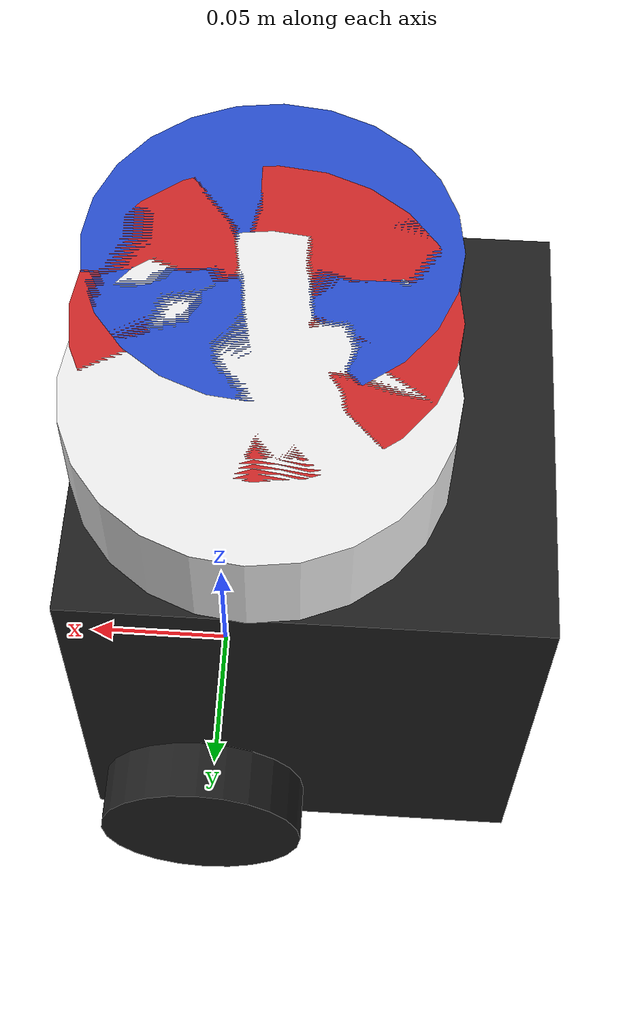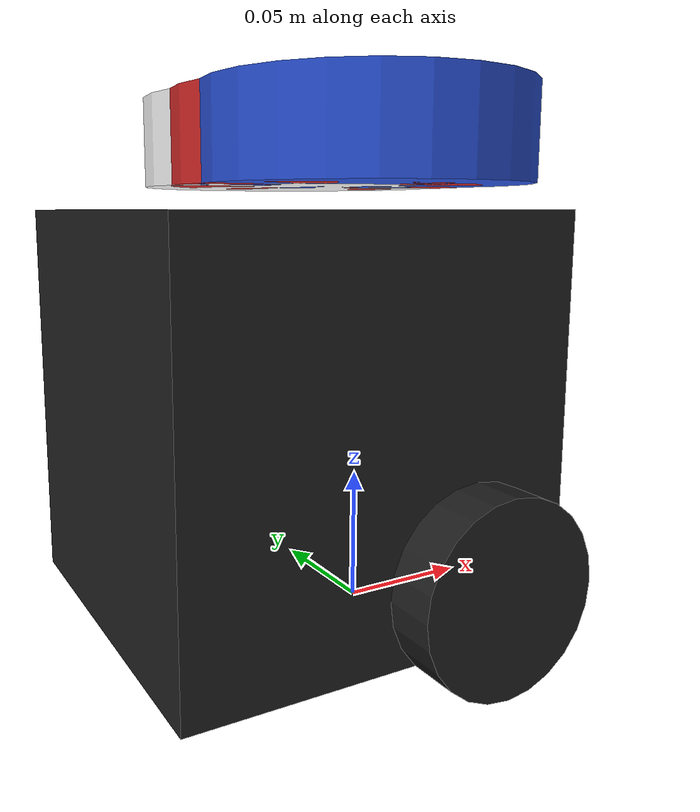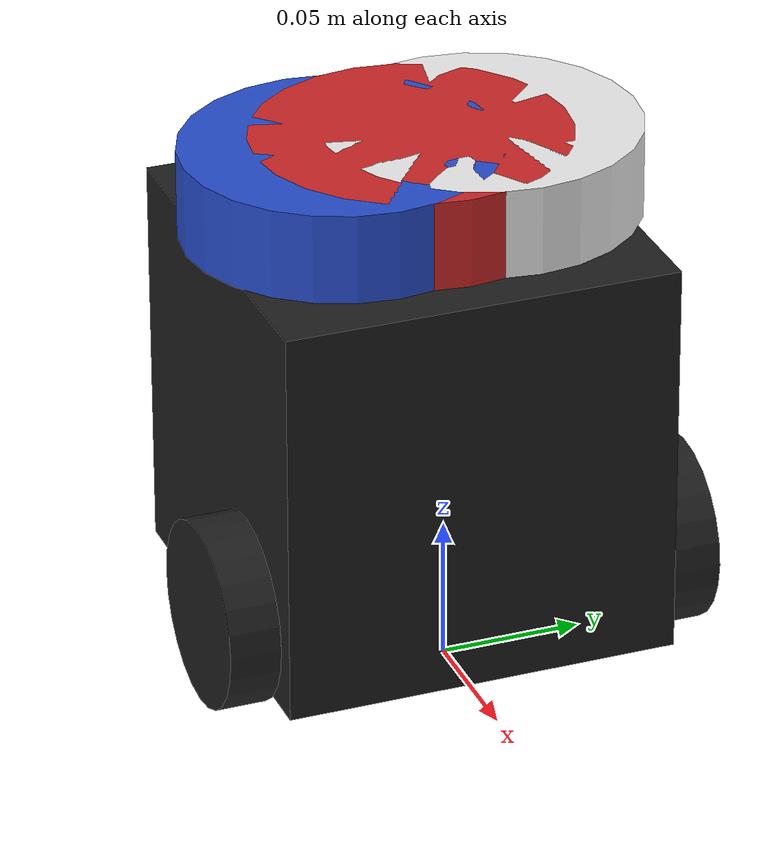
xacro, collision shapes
<?xml version="1.0" ?>
<robot name="turtlebot3_burger" xmlns:xacro="http://ros.org/wiki/xacro">
  <xacro:include filename="$(find turtlebot3_description)/urdf/common_properties.xacro"/>
  <xacro:include filename="$(find turtlebot3_description)/urdf/turtlebot3_burger.gazebo.xacro"/>

  <link name="base_footprint"/>

  <joint name="base_joint" type="fixed">
    <parent link="base_footprint"/>
    <child link="base_link"/>
    <origin xyz="0.0 0.0 0.010" rpy="0 0 0"/>
  </joint>

  <link name="base_link">
    <visual>
      <origin xyz="-0.032 0 0.0" rpy="0 0 0"/>
      <geometry>
        <mesh filename="package://turtlebot3_description/meshes/bases/burger_base.stl" scale="0.001 0.001 0.001"/>
      </geometry>
      <material name="light_black"/>
    </visual>

    <collision>
      <origin xyz="-0.032 0 0.070" rpy="0 0 0"/>
      <geometry>
        <box size="0.140 0.140 0.143"/>
      </geometry>
    </collision>

    <inertial>
      <origin xyz="0 0 0" rpy="0 0 0"/>
      <mass value="8.2573504e-01"/>
      <inertia ixx="2.2124416e-03" ixy="-1.2294101e-05" ixz="3.4938785e-05"
               iyy="2.1193702e-03" iyz="-5.0120904e-06"
               izz="2.0064271e-03" />
    </inertial>
  </link>

  <joint name="wheel_left_joint" type="continuous">
    <parent link="base_link"/>
    <child link="wheel_left_link"/>
    <origin xyz="0.0 0.08 0.023" rpy="-1.57 0 0"/>
    <axis xyz="0 0 1"/>
  </joint>

  <link name="wheel_left_link">
    <visual>
      <origin xyz="0 0 0" rpy="1.57 0 0"/>
      <geometry>
        <mesh filename="package://turtlebot3_description/meshes/wheels/left_tire.stl" scale="0.001 0.001 0.001"/>
      </geometry>
      <material name="dark"/>
    </visual>

    <collision>
      <origin xyz="0 0 0" rpy="0 0 0"/>
      <geometry>
        <cylinder length="0.018" radius="0.033"/>
      </geometry>
    </collision>

    <inertial>
      <origin xyz="0 0 0" />
      <mass value="2.8498940e-02" />
      <inertia ixx="1.1175580e-05" ixy="-4.2369783e-11" ixz="-5.9381719e-09"
               iyy="1.1192413e-05" iyz="-1.4400107e-11"
               izz="2.0712558e-05" />
      </inertial>
  </link>

  <joint name="wheel_right_joint" type="continuous">
    <parent link="base_link"/>
    <child link="wheel_right_link"/>
    <origin xyz="0.0 -0.080 0.023" rpy="-1.57 0 0"/>
    <axis xyz="0 0 1"/>
  </joint>

  <link name="wheel_right_link">
    <visual>
      <origin xyz="0 0 0" rpy="1.57 0 0"/>
      <geometry>
        <mesh filename="package://turtlebot3_description/meshes/wheels/right_tire.stl" scale="0.001 0.001 0.001"/>
      </geometry>
      <material name="dark"/>
    </visual>

    <collision>
      <origin xyz="0 0 0" rpy="0 0 0"/>
      <geometry>
        <cylinder length="0.018" radius="0.033"/>
      </geometry>
    </collision>

    <inertial>
      <origin xyz="0 0 0" />
      <mass value="2.8498940e-02" />
      <inertia ixx="1.1175580e-05" ixy="-4.2369783e-11" ixz="-5.9381719e-09"
               iyy="1.1192413e-05" iyz="-1.4400107e-11"
               izz="2.0712558e-05" />
      </inertial>
  </link>

  <joint name="caster_back_joint" type="fixed">
    <parent link="base_link"/>
    <child link="caster_back_link"/>
    <origin xyz="-0.081 0 -0.004" rpy="-1.57 0 0"/>
  </joint>

  <link name="caster_back_link">
    <collision>
      <origin xyz="0 0.001 0" rpy="0 0 0"/>
      <geometry>
        <box size="0.030 0.009 0.020"/>
      </geometry>
    </collision>

    <inertial>
      <origin xyz="0 0 0" />
      <mass value="0.005" />
      <inertia ixx="0.001" ixy="0.0" ixz="0.0"
               iyy="0.001" iyz="0.0"
               izz="0.001" />
    </inertial>
  </link>

  <joint name="imu_joint" type="fixed">
    <parent link="base_link"/>
    <child link="imu_link"/>
    <origin xyz="-0.032 0 0.068" rpy="0 0 0"/>
  </joint>

  <link name="imu_link"/>

<!--             right camera                    -->

  <joint name="camera_right_joint" type="fixed">
    <parent link="base_link"/>
    <child link="base_camera_right"/>
    <origin xyz="-0.032 -0.03 0.172" rpy="0 0 0"/>
  </joint>

  <link name="base_camera_right">
    <visual>
      <origin xyz="0 0 0" rpy="0 0 0"/>
      <geometry>
        <mesh filename="package://turtlebot3_description/meshes/sensors/lds.stl" scale="0.0003 0.0003 0.0003"/>
      </geometry>
      <material name="blue"/>
    </visual>

    <collision>
      <origin xyz="0.015 0 -0.0065" rpy="0 0 0"/>
      <geometry>
        <cylinder length="0.0315" radius="0.055"/>
      </geometry>
    </collision>

    <inertial>
      <mass value="0.114" />
      <origin xyz="0 0 0" />
      <inertia ixx="0.001" ixy="0.0" ixz="0.0"
               iyy="0.001" iyz="0.0"
               izz="0.001" />
    </inertial>
  </link>

<!--             left camera            -->
  <joint name="camera_left_joint" type="fixed">
    <parent link="base_link"/>
    <child link="base_camera_left"/>
    <origin xyz="-0.032 0.02 0.172" rpy="0 0 0"/>
  </joint>

  <link name="base_camera_left">
    <visual>
      <origin xyz="0 0 0" rpy="0 0 0"/>
      <geometry>
        <mesh filename="package://turtlebot3_description/meshes/sensors/lds.stl" scale="0.0003 0.0003 0.0003"/>
      </geometry>
      <material name="white"/>
    </visual>

    <collision>
      <origin xyz="0.015 0 -0.0065" rpy="0 0 0"/>
      <geometry>
        <cylinder length="0.0315" radius="0.055"/>
      </geometry>
    </collision>

    <inertial>
      <mass value="0.114" />
      <origin xyz="0 0 0" />
      <inertia ixx="0.001" ixy="0.0" ixz="0.0"
               iyy="0.001" iyz="0.0"
               izz="0.001" />
    </inertial>
  </link>
<!-- depth camera-->

  <joint name="camera_depth_joint" type="fixed">
    <parent link="base_link"/>
    <child link="base_camera_depth"/>
    <origin xyz="-0.032 -0.005 0.172" rpy="0 0 0"/>
  </joint>

  <link name="base_camera_depth">
    <visual>
      <origin xyz="0 0 0" rpy="0 0 0"/>
      <geometry>
        <mesh filename="package://turtlebot3_description/meshes/sensors/lds.stl" scale="0.0002 0.0002 0.0002"/>
      </geometry>
      <material name="red"/>
    </visual>

    <collision>
      <origin xyz="0.015 0 -0.0065" rpy="0 0 0"/>
      <geometry>
        <cylinder length="0.0315" radius="0.055"/>
      </geometry>
    </collision>

    <inertial>
      <mass value="0.114" />
      <origin xyz="0 0 0" />
      <inertia ixx="0.001" ixy="0.0" ixz="0.0"
               iyy="0.001" iyz="0.0"
               izz="0.001" />
    </inertial>
  </link>

</robot>
